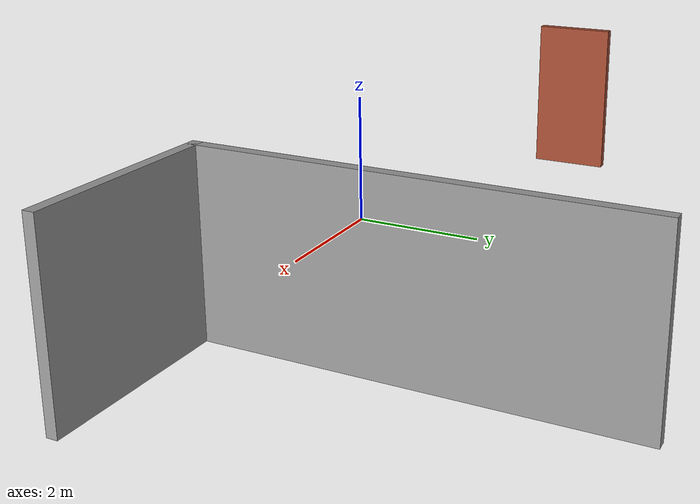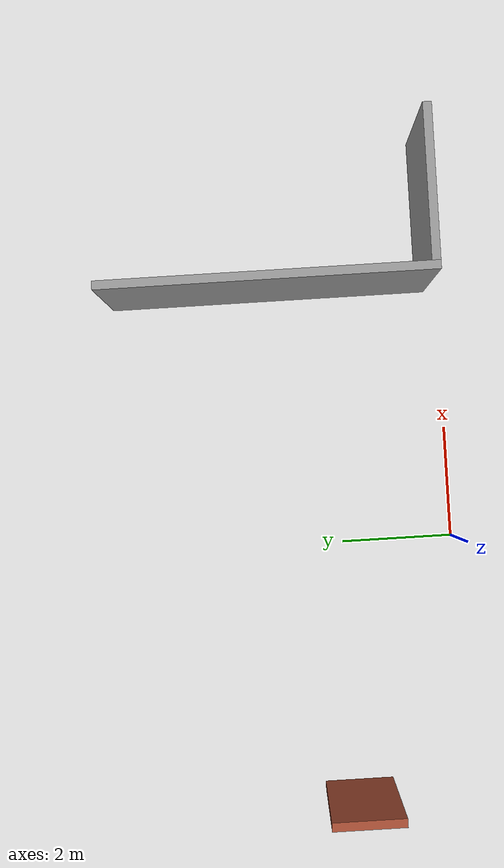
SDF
<?xml version='1.0'?>
<sdf version='1.6'>
  <model name='housemodified'>
    <pose frame=''>1.35667 3.1096 0 0 -0 0</pose>
    <link name='Wall_0'>
      <collision name='Wall_0_Collision'>
        <geometry>
          <box>
            <size>1.25 0.15 2.5</size>
          </box>
        </geometry>
        <pose frame=''>0 0 1.25 0 -0 0</pose>
      </collision>
      <visual name='Wall_0_Visual'>
        <pose frame=''>0 0 1.25 0 -0 0</pose>
        <geometry>
          <box>
            <size>1.25 0.15 2.5</size>
          </box>
        </geometry>
        <material>
          <script>
            <uri>file://media/materials/scripts/gazebo.material</uri>
            <name>Gazebo/Bricks</name>
          </script>
          <ambient>1 1 1 1</ambient>
        </material>
      </visual>
      <pose frame=''>-5.85616 -1.14495 0 0 -0 1.5708</pose>
    </link>
    <link name='Wall_6'>
      <collision name='Wall_6_Collision'>
        <geometry>
          <box>
            <size>5.75 0.15 2.5</size>
          </box>
        </geometry>
        <pose frame=''>0 0 1.25 0 -0 0</pose>
      </collision>
      <visual name='Wall_6_Visual'>
        <pose frame=''>0 0 1.25 0 -0 0</pose>
        <geometry>
          <box>
            <size>5.75 0.15 2.5</size>
          </box>
        </geometry>
        <material>
          <script>
            <uri>file://media/materials/scripts/gazebo.material</uri>
            <name>Gazebo/Grey</name>
          </script>
          <ambient>1 1 1 1</ambient>
        </material>
      </visual>
      <pose frame=''>3.25616 0 0 0 0 -1.5708</pose>
    </link>
    <link name='Wall_7'>
      <collision name='Wall_7_Collision'>
        <geometry>
          <box>
            <size>2.75 0.15 2.5</size>
          </box>
        </geometry>
        <pose frame=''>0 0 1.25 0 -0 0</pose>
      </collision>
      <visual name='Wall_7_Visual'>
        <pose frame=''>0 0 1.25 0 -0 0</pose>
        <geometry>
          <box>
            <size>2.75 0.15 2.5</size>
          </box>
        </geometry>
        <material>
          <script>
            <uri>file://media/materials/scripts/gazebo.material</uri>
            <name>Gazebo/Grey</name>
          </script>
          <ambient>1 1 1 1</ambient>
        </material>
      </visual>
      <pose frame=''>4.55616 -2.8 0 0 -0 0</pose>
    </link>
    <static>1</static>
  </model>
</sdf>
